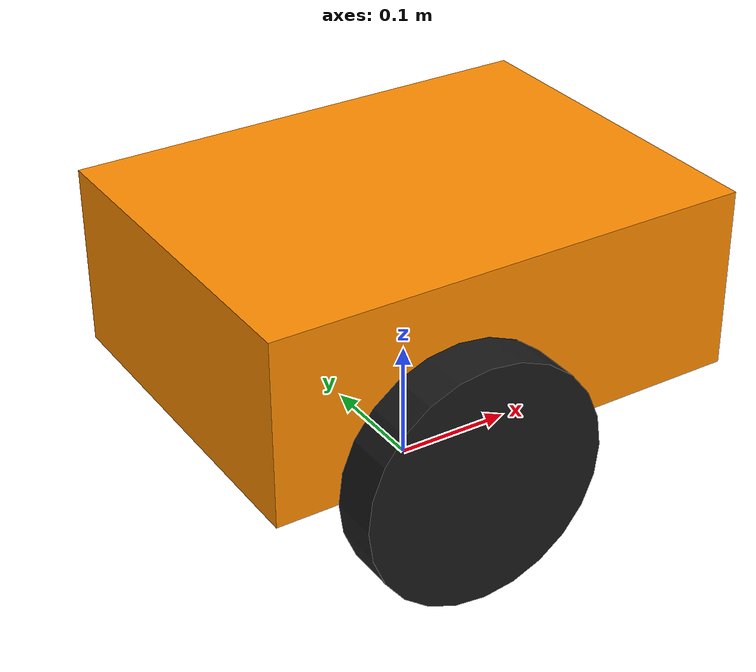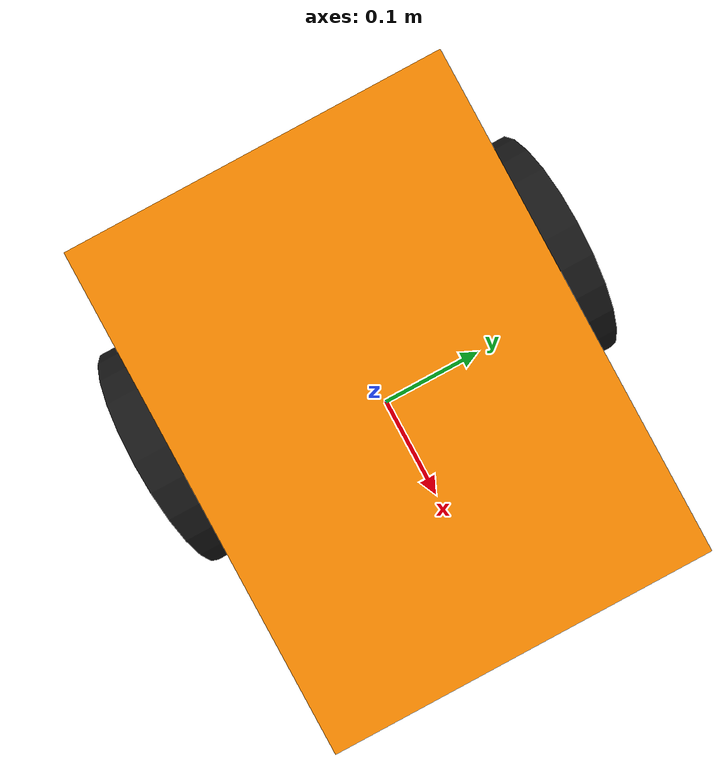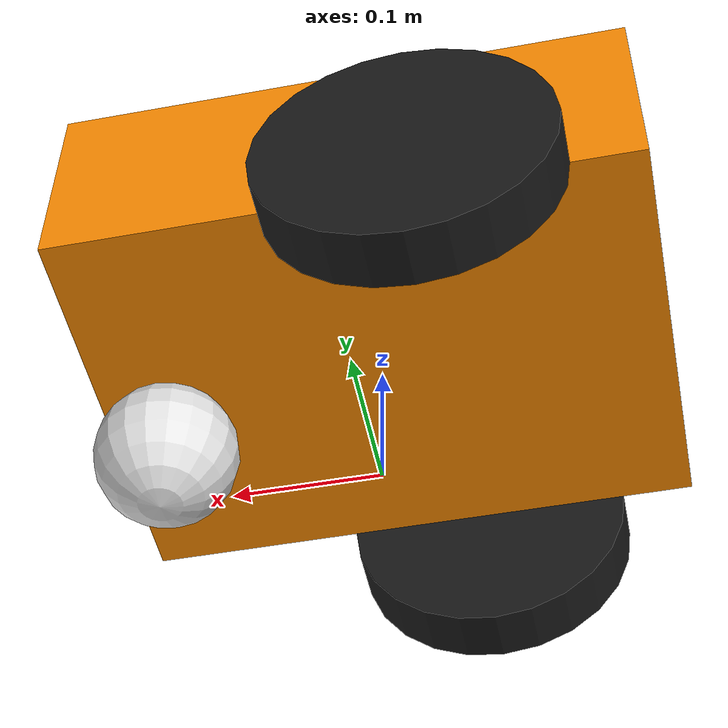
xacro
<?xml version="1.0"?>
<robot name="my_diff_bot" xmlns:xacro="http://www.ros.org/wiki/xacro">

  <!-- Include inertial calculations macros -->
  <xacro:include filename="inertial_macros.xacro"/>

  <!-- Auto-detected from ROS_DISTRO in the launch file:
       true  = Jazzy / Gazebo Sim (Ignition)
       false = Humble / Gazebo Classic -->
  <xacro:arg name="use_gz_sim" default="true"/>

  <!-- base_footprint: Projection of robot onto the ground plane -->
  <link name="base_footprint"/>

  <!-- base_link: The main coordinate frame of the robot chassis -->
  <link name="base_link">
    <visual>
      <origin xyz="0 0 0.075" rpy="0 0 0"/>
      <geometry>
        <box size="0.4 0.3 0.15"/>
      </geometry>
      <material name="orange"><color rgba="1.0 0.55 0.0 1.0"/></material>
    </visual>
    <collision>
      <origin xyz="0 0 0.075" rpy="0 0 0"/>
      <geometry>
        <box size="0.4 0.3 0.15"/>
      </geometry>
    </collision>
    <xacro:inertial_box mass="5.0" x="0.4" y="0.3" z="0.15">
      <origin xyz="0 0 0.075" rpy="0 0 0"/>
    </xacro:inertial_box>
  </link>

  <joint name="base_footprint_joint" type="fixed">
    <parent link="base_footprint"/>
    <child link="base_link"/>
    <!-- Elevate base_link relative to base_footprint (wheels center height) -->
    <origin xyz="0 0 0.1" rpy="0 0 0"/>
  </joint>

  <!-- Drive Wheels Setup -->
  <xacro:property name="wheel_radius" value="0.1"/>
  <xacro:property name="wheel_thickness" value="0.04"/>

  <xacro:macro name="wheel" params="prefix y_offset">
    <link name="${prefix}_wheel">
      <visual>
        <geometry>
          <cylinder radius="${wheel_radius}" length="${wheel_thickness}"/>
        </geometry>
        <material name="black"><color rgba="0.1 0.1 0.1 1.0"/></material>
      </visual>
      <collision>
        <geometry>
          <cylinder radius="${wheel_radius}" length="${wheel_thickness}"/>
        </geometry>
      </collision>
      <xacro:inertial_cylinder mass="0.5" radius="${wheel_radius}" length="${wheel_thickness}">
        <origin xyz="0 0 0" rpy="0 0 0"/>
      </xacro:inertial_cylinder>
    </link>

    <joint name="${prefix}_wheel_joint" type="continuous">
      <parent link="base_link"/>
      <child link="${prefix}_wheel"/>
      <!-- Wheel offset on Y axis, oriented horizontally (rotate around X axis) -->
      <origin xyz="-0.05 ${y_offset} 0" rpy="-1.5708 0 0"/>
      <axis xyz="0 0 1"/>
    </joint>
  </xacro:macro>

  <xacro:wheel prefix="left" y_offset="0.17"/>
  <xacro:wheel prefix="right" y_offset="-0.17"/>

  <!-- Castor Wheel (Passive balance wheel) -->
  <link name="castor_wheel">
    <visual>
      <geometry>
        <sphere radius="0.05"/>
      </geometry>
      <material name="white"><color rgba="0.9 0.9 0.9 1.0"/></material>
    </visual>
    <collision>
      <geometry>
        <sphere radius="0.05"/>
      </geometry>
    </collision>
    <xacro:inertial_sphere mass="0.1" radius="0.05">
      <origin xyz="0 0 0" rpy="0 0 0"/>
    </xacro:inertial_sphere>
  </link>

  <joint name="castor_wheel_joint" type="fixed">
    <parent link="base_link"/>
    <child link="castor_wheel"/>
    <!-- Positioned forward, lowered to touch the ground (0.1m wheels radius - 0.05m castor radius) -->
    <origin xyz="0.15 0 -0.05" rpy="0 0 0"/>
  </joint>

  <!--         Gazebo Simulation                    -->

  <!-- Wheel friction — keeps wheels gripping the ground -->
  <gazebo reference="left_wheel">
    <mu1 value="1.0"/>
    <mu2 value="1.0"/>
  </gazebo>

  <gazebo reference="right_wheel">
    <mu1 value="1.0"/>
    <mu2 value="1.0"/>
  </gazebo>

  <gazebo reference="castor_wheel">
    <!-- Near-zero friction so the castor slides freely -->
    <mu1 value="0.001"/>
    <mu2 value="0.001"/>
  </gazebo>

  <!-- ===== Gazebo Diff Drive Plugin ===== -->
  <!-- Reads /cmd_vel and drives the wheels. Publishes /odom and /tf. -->
  <gazebo>
    <xacro:if value="$(arg use_gz_sim)">
      <!-- Jazzy / Gazebo Sim (Ignition) -->
      <plugin filename="gz-sim-diff-drive-system" name="gz::sim::systems::DiffDrive">
        <left_joint>left_wheel_joint</left_joint>
        <right_joint>right_wheel_joint</right_joint>
        <wheel_separation>0.34</wheel_separation>
        <wheel_radius>0.1</wheel_radius>
        <odom_publish_frequency>50</odom_publish_frequency>
        <topic>cmd_vel</topic>
        <odom_topic>odom</odom_topic>
        <tf_topic>tf</tf_topic>
        <frame_id>odom</frame_id>
        <child_frame_id>base_footprint</child_frame_id>
      </plugin>

      <!-- Publish wheel joint angles to /joint_states (needed by robot_state_publisher) -->
      <plugin filename="gz-sim-joint-state-publisher-system" name="gz::sim::systems::JointStatePublisher">
        <topic>joint_states</topic>
        <joint_name>left_wheel_joint</joint_name>
        <joint_name>right_wheel_joint</joint_name>
      </plugin>
    </xacro:if>

    <xacro:unless value="$(arg use_gz_sim)">
      <!-- Humble / Gazebo Classic -->
      <plugin name="diff_drive" filename="libgazebo_ros_diff_drive.so">
        <odometry_frame>odom</odometry_frame>
        <robot_base_frame>base_footprint</robot_base_frame>
        <publish_odom>true</publish_odom>
        <publish_odom_tf>true</publish_odom_tf>
        <publish_wheel_tf>true</publish_wheel_tf>
        <left_joint>left_wheel_joint</left_joint>
        <right_joint>right_wheel_joint</right_joint>
        <wheel_separation>0.34</wheel_separation>
        <wheel_diameter>0.2</wheel_diameter>
        <max_wheel_torque>20.0</max_wheel_torque>
        <max_wheel_acceleration>1.0</max_wheel_acceleration>
      </plugin>
    </xacro:unless>
  </gazebo>

</robot>

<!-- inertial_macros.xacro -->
<robot xmlns:xacro="http://www.ros.org/wiki/xacro">

  <!-- Inertia for a box -->
  <xacro:macro name="inertial_box" params="mass x y z *origin">
    <inertial>
      <xacro:insert_block name="origin"/>
      <mass value="${mass}"/>
      <inertia ixx="${(1/12) * mass * (y*y + z*z)}" ixy="0.0" ixz="0.0"
               iyy="${(1/12) * mass * (x*x + z*z)}" iyz="0.0"
               izz="${(1/12) * mass * (x*x + y*y)}"/>
    </inertial>
  </xacro:macro>

  <!-- Inertia for a solid sphere -->
  <xacro:macro name="inertial_sphere" params="mass radius *origin">
    <inertial>
      <xacro:insert_block name="origin"/>
      <mass value="${mass}"/>
      <inertia ixx="${(2/5) * mass * (radius*radius)}" ixy="0.0" ixz="0.0"
               iyy="${(2/5) * mass * (radius*radius)}" iyz="0.0"
               izz="${(2/5) * mass * (radius*radius)}"/>
    </inertial>
  </xacro:macro>

  <!-- Inertia for a cylinder -->
  <xacro:macro name="inertial_cylinder" params="mass radius length *origin">
    <inertial>
      <xacro:insert_block name="origin"/>
      <mass value="${mass}"/>
      <inertia ixx="${(1/12) * mass * (3*radius*radius + length*length)}" ixy="0.0" ixz="0.0"
               iyy="${(1/12) * mass * (3*radius*radius + length*length)}" iyz="0.0"
               izz="${(1/2) * mass * (radius*radius)}"/>
    </inertial>
  </xacro:macro>

</robot>
